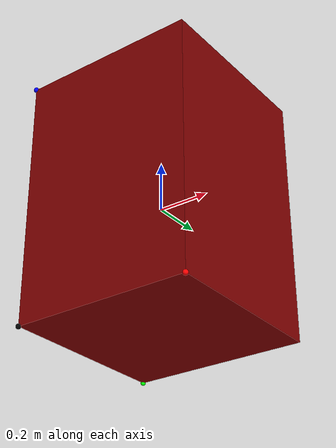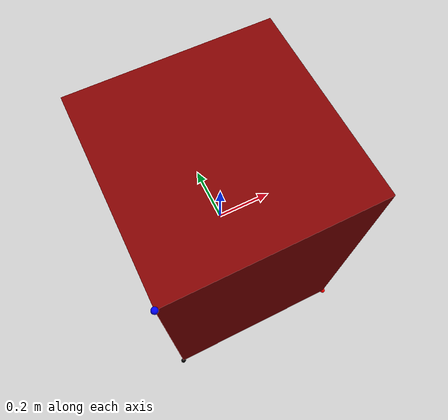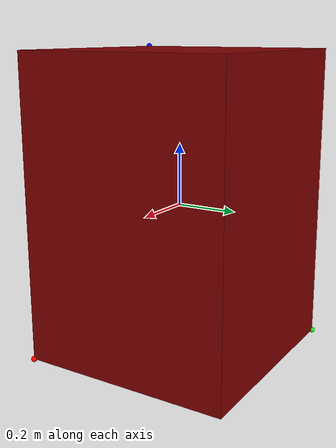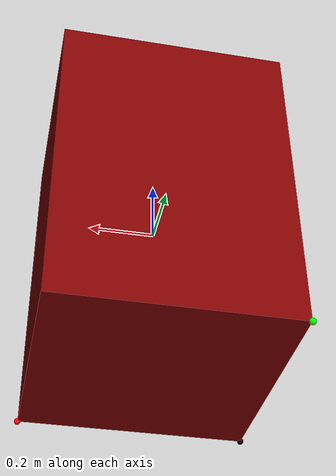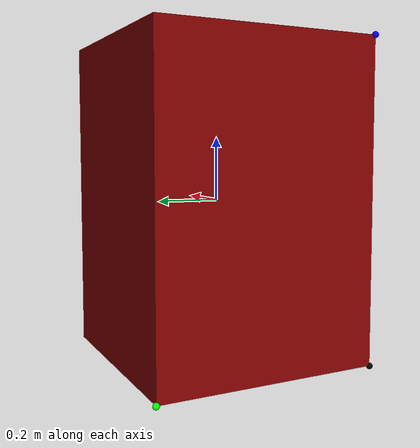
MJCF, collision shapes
<mujoco model="model">
  <compiler angle="radian"/>
  <asset>
    <texture file="visuals/material_0.png" name="tex-model" type="2d"/>
    <texture type="2d" name="image0" file="visuals/image0.png"/>
    <texture type="2d" name="image1" file="visuals/image1.png"/>
    <texture type="2d" name="image2" file="visuals/image2.png"/>
    <texture type="2d" name="image3" file="visuals/image3.png"/>
    <material name="model" reflectance="0.5" texrepeat="1 1" texture="tex-model" texuniform="false"/>
    <material name="blinn1SG" texture="image0" specular="0.5" shininess="0.15999998099999999"/>
    <material name="blinn2SG" texture="image1" specular="0.5" shininess="0.15999998099999999"/>
    <material name="blinn3SG" texture="image2" specular="0.5" shininess="0.15999998099999999"/>
    <material name="blinn4SG" texture="image3" specular="0.5" shininess="0.0"/>
    <mesh file="visuals/model_0.obj" name="model_0_vis" scale="1 1 1"/>
    <mesh file="visuals/model_1.obj" name="model_1_vis" scale="1 1 1"/>
    <mesh file="visuals/model_2.obj" name="model_2_vis" scale="1 1 1"/>
    <mesh file="visuals/model_3.obj" name="model_3_vis" scale="1 1 1"/>
  </asset>
  <default>
    <default class="visual">
      <geom conaffinity="0" contype="0" group="1" type="mesh"/>
    </default>
    <default class="collision">
      <geom group="0" rgba="0.5 0 0 0.5"/>
    </default>
  </default>
  <worldbody>
    <body>
      <!-- exterior bounding box points -->
      <site rgba="0 0 0 1" size="0.01" pos="-0.35 -0.35 -0.49999999999999994" name="ext_p0"/>
      <site rgba="1 0 0 1" size="0.01" pos="0.35 -0.35 -0.49999999999999994" name="ext_px"/>
      <site rgba="0 1 0 1" size="0.01" pos="-0.35 0.35 -0.49999999999999994" name="ext_py"/>
      <site rgba="0 0 1 1" size="0.01" pos="-0.35 -0.35 0.49999999999999994" name="ext_pz"/>
      <!-- interior bounding box points -->
      <body name="object">
        <geom solimp="0.998 0.998 0.001" solref="0.001 1" density="100" friction="0.95 0.3 0.1" type="mesh" mesh="model_0_vis" material="blinn2SG" class="visual"/>
        <geom solimp="0.998 0.998 0.001" solref="0.001 1" density="100" friction="0.95 0.3 0.1" type="mesh" mesh="model_1_vis" material="blinn1SG" class="visual"/>
        <geom solimp="0.998 0.998 0.001" solref="0.001 1" density="100" friction="0.95 0.3 0.1" type="mesh" mesh="model_2_vis" material="blinn4SG" class="visual"/>
        <geom solimp="0.998 0.998 0.001" solref="0.001 1" density="100" friction="0.95 0.3 0.1" type="mesh" mesh="model_3_vis" material="blinn3SG" class="visual"/>
        <geom class="collision" type="box" pos="0 0 0" size="0.35 0.35 0.49999999999999994"/>
      </body>
    </body>
  </worldbody>
</mujoco>
